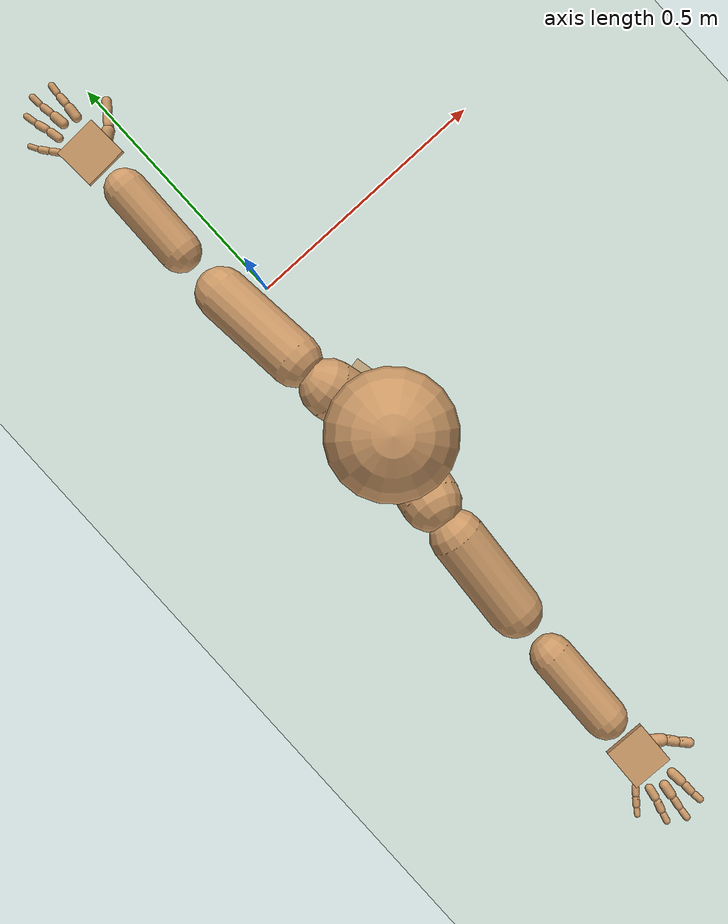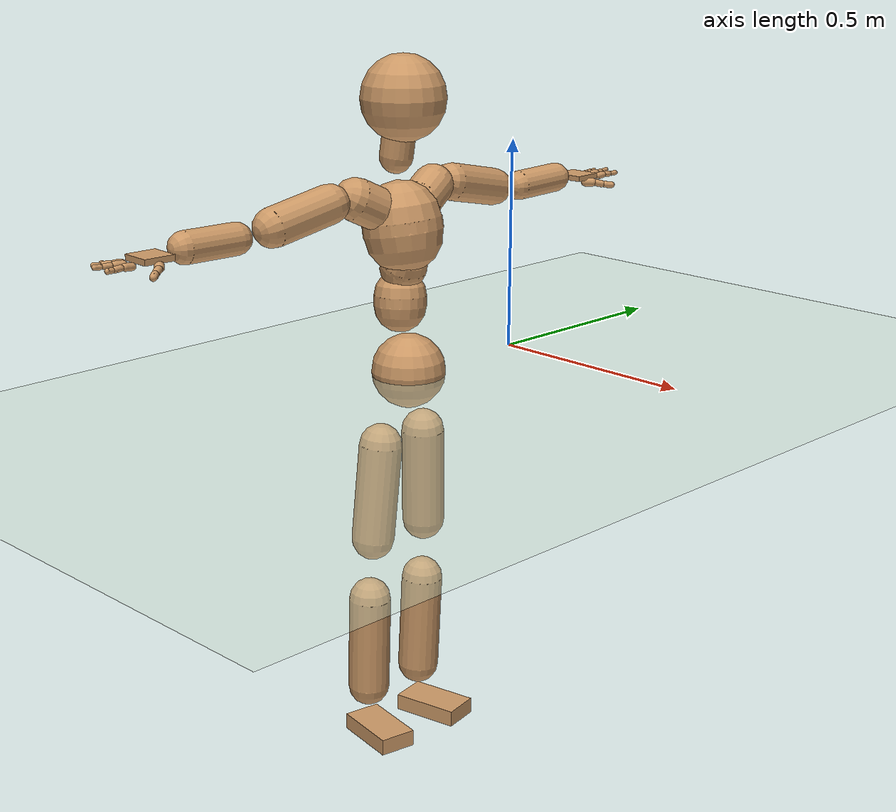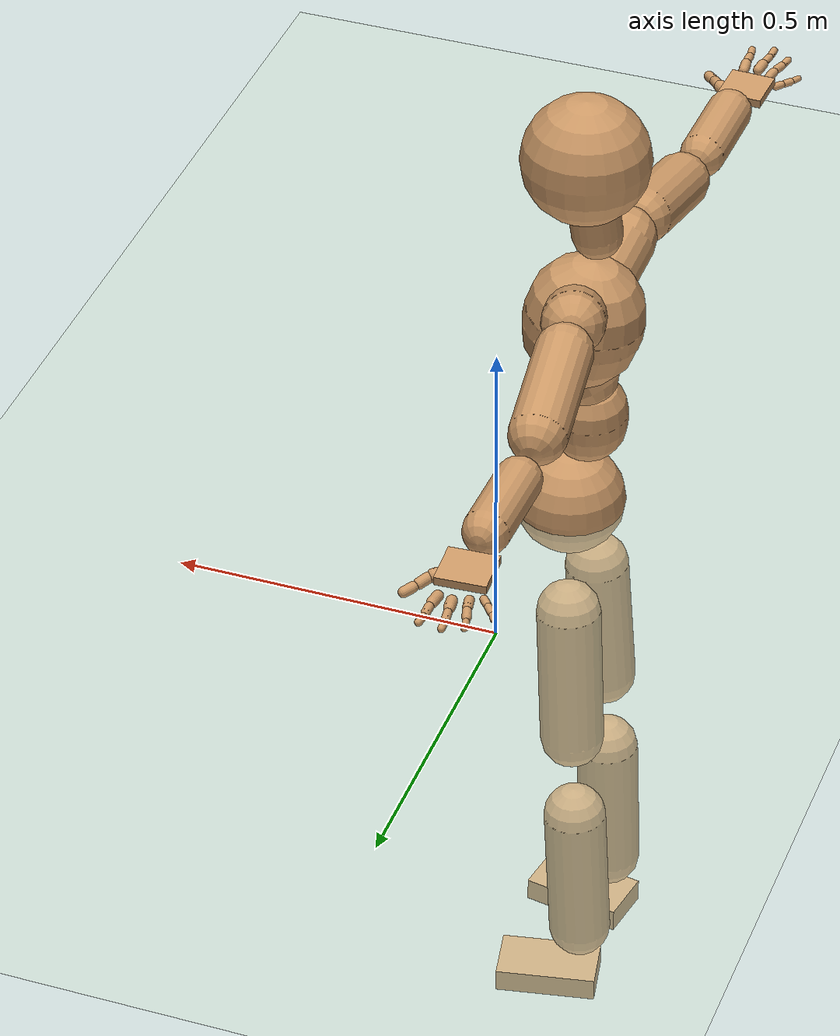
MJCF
<mujoco model="humanoid">
  <compiler coordinate="local" angle="radian"/>
  <default>
    <joint damping="0.0" armature="0.01" stiffness="0.0" limited="true"/>
    <geom conaffinity="1" condim="3" contype="7" margin="0.001" rgba="0.8 0.6 .4 1"/>
  </default>
  <asset>
    <texture type="skybox" builtin="gradient" rgb1=".4 .5 .6" rgb2="0 0 0" width="100" height="100"/>
    <texture builtin="flat" height="1278" mark="cross" markrgb="1 1 1" name="texgeom" random="0.01" rgb1="0.8 0.6 0.4" rgb2="0.8 0.6 0.4" type="cube" width="127"/>
    <texture builtin="checker" height="100" name="texplane" rgb1="0 0 0" rgb2="0.8 0.8 0.8" type="2d" width="100"/>
    <material name="MatPlane" reflectance="0.5" shininess="1" specular="1" texrepeat="60 60" texture="texplane"/>
    <material name="geom" texture="texgeom" texuniform="true"/>
  </asset>
  <worldbody>
    <light cutoff="100" diffuse="1 1 1" dir="-0 0 -1.3" directional="true" exponent="1" pos="0 0 1.3" specular=".1 .1 .1"/>
    <geom conaffinity="1" condim="3" name="floor" pos="0 0 0" rgba="0.8 0.9 0.8 1" size="100 100 .2" type="plane" material="MatPlane"/>
    <body name="Pelvis" pos="0.0003 -0.3403 0.0085">
      <freejoint name="Pelvis"/>
      <geom type="sphere" contype="1" conaffinity="1" density="500" size="0.0858" pos="0.0000 0.0000 0.0000" name="Pelvis"/>
      <body name="L_Hip" pos="-0.0182 0.0628 -0.0872">
        <joint name="L_Hip_x" type="hinge" pos="0 0 0" axis="1 0 0" stiffness="800" damping="80" armature="0.02" range="-180.0000 180.0000"/>
        <joint name="L_Hip_y" type="hinge" pos="0 0 0" axis="0 1 0" stiffness="800" damping="80" armature="0.02" range="-180.0000 180.0000"/>
        <joint name="L_Hip_z" type="hinge" pos="0 0 0" axis="0 0 1" stiffness="800" damping="80" armature="0.02" range="-180.0000 180.0000"/>
        <geom type="capsule" contype="1" conaffinity="1" density="500" fromto="-0.0046 0.0050 -0.0778 -0.0185 0.0202 -0.3114" size="0.05" name="L_Hip"/>
        <body name="L_Knee" pos="-0.0231 0.0252 -0.3892">
          <joint name="L_Knee_x" type="hinge" pos="0 0 0" axis="1 0 0" stiffness="800" damping="80" armature="0.02" range="-180.0000 180.0000"/>
          <joint name="L_Knee_y" type="hinge" pos="0 0 0" axis="0 1 0" stiffness="800" damping="80" armature="0.02" range="-180.0000 180.0000"/>
          <joint name="L_Knee_z" type="hinge" pos="0 0 0" axis="0 0 1" stiffness="800" damping="80" armature="0.02" range="-180.0000 180.0000"/>
          <geom type="capsule" contype="1" conaffinity="1" density="500" fromto="-0.0035 -0.0010 -0.0786 -0.0141 -0.0039 -0.3143" size="0.0492" name="L_Knee"/>
          <body name="L_Ankle" pos="-0.0176 -0.0049 -0.3929">
            <joint name="L_Ankle_x" type="hinge" pos="0 0 0" axis="1 0 0" stiffness="800" damping="80" armature="0.02" range="-180.0000 180.0000"/>
            <joint name="L_Ankle_y" type="hinge" pos="0 0 0" axis="0 1 0" stiffness="800" damping="80" armature="0.02" range="-180.0000 180.0000"/>
            <joint name="L_Ankle_z" type="hinge" pos="0 0 0" axis="0 0 1" stiffness="800" damping="80" armature="0.02" range="-180.0000 180.0000"/>
            <geom type="box" contype="1" conaffinity="1" density="500" pos="0.0520 0.0103 -0.0227" size="0.08 0.0438 0.0195" quat="0.9952 0.0000 0.0000 0.0976" name="L_Ankle"/>
            <body name="L_Toe" pos="0.104 0.0206 -0.0454">
              <joint name="L_Toe_x" type="hinge" pos="0 0 0" axis="1 0 0" stiffness="500" damping="50" armature="0.02" range="-180.0000 180.0000"/>
              <joint name="L_Toe_y" type="hinge" pos="0 0 0" axis="0 1 0" stiffness="500" damping="50" armature="0.02" range="-180.0000 180.0000"/>
              <joint name="L_Toe_z" type="hinge" pos="0 0 0" axis="0 0 1" stiffness="500" damping="50" armature="0.02" range="-180.0000 180.0000"/>
              <geom type="box" contype="1" conaffinity="1" density="500" pos="0.0000 0.0000 0.0230" size="0.0009 0.0022 0.001" quat="0.9945 0.0000 0.0000 0.1048" name="L_Toe"/>
            </body>
          </body>
        </body>
      </body>
      <body name="R_Hip" pos="-0.0199 -0.062 -0.0939">
        <joint name="R_Hip_x" type="hinge" pos="0 0 0" axis="1 0 0" stiffness="800" damping="80" armature="0.02" range="-180.0000 180.0000"/>
        <joint name="R_Hip_y" type="hinge" pos="0 0 0" axis="0 1 0" stiffness="800" damping="80" armature="0.02" range="-180.0000 180.0000"/>
        <joint name="R_Hip_z" type="hinge" pos="0 0 0" axis="0 0 1" stiffness="800" damping="80" armature="0.02" range="-180.0000 180.0000"/>
        <geom type="capsule" contype="1" conaffinity="1" density="500" fromto="-0.0035 -0.0056 -0.0770 -0.0139 -0.0226 -0.3078" size="0.0499" name="R_Hip"/>
        <body name="R_Knee" pos="-0.0173 -0.0282 -0.3848">
          <joint name="R_Knee_x" type="hinge" pos="0 0 0" axis="1 0 0" stiffness="800" damping="80" armature="0.02" range="-180.0000 180.0000"/>
          <joint name="R_Knee_y" type="hinge" pos="0 0 0" axis="0 1 0" stiffness="800" damping="80" armature="0.02" range="-180.0000 180.0000"/>
          <joint name="R_Knee_z" type="hinge" pos="0 0 0" axis="0 0 1" stiffness="800" damping="80" armature="0.02" range="-180.0000 180.0000"/>
          <geom type="capsule" contype="1" conaffinity="1" density="500" fromto="-0.0027 0.0001 -0.0769 -0.0108 0.0004 -0.3076" size="0.0492" name="R_Knee"/>
          <body name="R_Ankle" pos="-0.0135 0.0005 -0.3845">
            <joint name="R_Ankle_x" type="hinge" pos="0 0 0" axis="1 0 0" stiffness="800" damping="80" armature="0.02" range="-180.0000 180.0000"/>
            <joint name="R_Ankle_y" type="hinge" pos="0 0 0" axis="0 1 0" stiffness="800" damping="80" armature="0.02" range="-180.0000 180.0000"/>
            <joint name="R_Ankle_z" type="hinge" pos="0 0 0" axis="0 0 1" stiffness="800" damping="80" armature="0.02" range="-180.0000 180.0000"/>
            <geom type="box" contype="1" conaffinity="1" density="500" pos="0.0489 -0.0084 -0.0246" size="0.08 0.0438 0.0195" quat="0.9964 0.0000 0.0000 -0.0848" name="R_Ankle"/>
            <body name="R_Toe" pos="0.0978 -0.0168 -0.0491">
              <joint name="R_Toe_x" type="hinge" pos="0 0 0" axis="1 0 0" stiffness="500" damping="50" armature="0.02" range="-180.0000 180.0000"/>
              <joint name="R_Toe_y" type="hinge" pos="0 0 0" axis="0 1 0" stiffness="500" damping="50" armature="0.02" range="-180.0000 180.0000"/>
              <joint name="R_Toe_z" type="hinge" pos="0 0 0" axis="0 0 1" stiffness="500" damping="50" armature="0.02" range="-180.0000 180.0000"/>
              <geom type="box" contype="1" conaffinity="1" density="500" pos="0.0000 0.0000 0.0249" size="0.0009 0.0022 0.001" quat="0.9973 0.0000 0.0000 -0.0734" name="R_Toe"/>
            </body>
          </body>
        </body>
      </body>
      <body name="Torso" pos="-0.0235 -0.0047 0.0998">
        <joint name="Torso_x" type="hinge" pos="0 0 0" axis="1 0 0" stiffness="1000" damping="100" armature="0.02" range="-180.0000 180.0000"/>
        <joint name="Torso_y" type="hinge" pos="0 0 0" axis="0 1 0" stiffness="1000" damping="100" armature="0.02" range="-180.0000 180.0000"/>
        <joint name="Torso_z" type="hinge" pos="0 0 0" axis="0 0 1" stiffness="1000" damping="100" armature="0.02" range="-180.0000 180.0000"/>
        <geom type="capsule" contype="1" conaffinity="1" density="500" fromto="-0.0034 0.0048 0.0722 -0.0023 0.0032 0.0481" size="0.0603" name="Torso"/>
        <body name="Spine" pos="-0.0057 0.0079 0.1203">
          <joint name="Spine_x" type="hinge" pos="0 0 0" axis="1 0 0" stiffness="1000" damping="100" armature="0.02" range="-180.0000 180.0000"/>
          <joint name="Spine_y" type="hinge" pos="0 0 0" axis="0 1 0" stiffness="1000" damping="100" armature="0.02" range="-180.0000 180.0000"/>
          <joint name="Spine_z" type="hinge" pos="0 0 0" axis="0 0 1" stiffness="1000" damping="100" armature="0.02" range="-180.0000 180.0000"/>
          <geom type="capsule" contype="1" conaffinity="1" density="500" fromto="0.0149 -0.0024 0.0264 0.0100 -0.0016 0.0176" size="0.0536" name="Spine"/>
          <body name="Chest" pos="0.0249 -0.0041 0.044">
            <joint name="Chest_x" type="hinge" pos="0 0 0" axis="1 0 0" stiffness="1000" damping="100" armature="0.02" range="-180.0000 180.0000"/>
            <joint name="Chest_y" type="hinge" pos="0 0 0" axis="0 1 0" stiffness="1000" damping="100" armature="0.02" range="-180.0000 180.0000"/>
            <joint name="Chest_z" type="hinge" pos="0 0 0" axis="0 0 1" stiffness="1000" damping="100" armature="0.02" range="-180.0000 180.0000"/>
            <geom type="capsule" contype="1" conaffinity="1" density="500" fromto="-0.0139 -0.0015 0.0819 -0.0093 -0.0010 0.0546" size="0.0912" name="Chest"/>
            <body name="Neck" pos="-0.0336 -0.0052 0.1913">
              <joint name="Neck_x" type="hinge" pos="0 0 0" axis="1 0 0" stiffness="500" damping="50" armature="0.02" range="-180.0000 180.0000"/>
              <joint name="Neck_y" type="hinge" pos="0 0 0" axis="0 1 0" stiffness="500" damping="50" armature="0.02" range="-180.0000 180.0000"/>
              <joint name="Neck_z" type="hinge" pos="0 0 0" axis="0 0 1" stiffness="500" damping="50" armature="0.02" range="-180.0000 180.0000"/>
              <geom type="capsule" contype="1" conaffinity="1" density="500" fromto="0.0043 0.0016 0.0324 0.0171 0.0066 0.1295" size="0.0384" name="Neck"/>
              <body name="Head" pos="0.0214 0.0082 0.1619">
                <joint name="Head_x" type="hinge" pos="0 0 0" axis="1 0 0" stiffness="500" damping="50" armature="0.02" range="-180.0000 180.0000"/>
                <joint name="Head_y" type="hinge" pos="0 0 0" axis="0 1 0" stiffness="500" damping="50" armature="0.02" range="-180.0000 180.0000"/>
                <joint name="Head_z" type="hinge" pos="0 0 0" axis="0 0 1" stiffness="500" damping="50" armature="0.02" range="-180.0000 180.0000"/>
                <geom type="sphere" contype="1" conaffinity="1" density="500" size="0.0971" pos="0.0000 0.0000 0.0000" name="Head"/>
              </body>
            </body>
            <body name="L_Thorax" pos="-0.0151 0.049 0.1113">
              <joint name="L_Thorax_x" type="hinge" pos="0 0 0" axis="1 0 0" stiffness="500" damping="50" armature="0.02" range="-180.0000 180.0000"/>
              <joint name="L_Thorax_y" type="hinge" pos="0 0 0" axis="0 1 0" stiffness="500" damping="50" armature="0.02" range="-180.0000 180.0000"/>
              <joint name="L_Thorax_z" type="hinge" pos="0 0 0" axis="0 0 1" stiffness="500" damping="50" armature="0.02" range="-180.0000 180.0000"/>
              <geom type="capsule" contype="1" conaffinity="1" density="500" fromto="-0.0046 0.0165 0.0083 -0.0182 0.0658 0.0331" size="0.0478" name="L_Thorax"/>
              <body name="L_Shoulder" pos="-0.0228 0.0823 0.0414">
                <joint name="L_Shoulder_x" type="hinge" pos="0 0 0" axis="1 0 0" stiffness="500" damping="50" armature="0.02" range="-180.0000 180.0000"/>
                <joint name="L_Shoulder_y" type="hinge" pos="0 0 0" axis="0 1 0" stiffness="500" damping="50" armature="0.02" range="-180.0000 180.0000"/>
                <joint name="L_Shoulder_z" type="hinge" pos="0 0 0" axis="0 0 1" stiffness="500" damping="50" armature="0.02" range="-180.0000 180.0000"/>
                <geom type="capsule" contype="1" conaffinity="1" density="500" fromto="-0.0050 0.0526 -0.0114 -0.0201 0.2102 -0.0454" size="0.0438" name="L_Shoulder"/>
                <body name="L_Elbow" pos="-0.0251 0.2628 -0.0568">
                  <joint name="L_Elbow_x" type="hinge" pos="0 0 0" axis="1 0 0" stiffness="500" damping="50" armature="0.02" range="-720.0000 720.0000"/>
                  <joint name="L_Elbow_y" type="hinge" pos="0 0 0" axis="0 1 0" stiffness="500" damping="50" armature="0.02" range="-720.0000 720.0000"/>
                  <joint name="L_Elbow_z" type="hinge" pos="0 0 0" axis="0 0 1" stiffness="500" damping="50" armature="0.02" range="-720.0000 720.0000"/>
                  <geom type="capsule" contype="1" conaffinity="1" density="500" fromto="0.0006 0.0433 0.0013 0.0023 0.1734 0.0050" size="0.0349" name="L_Elbow"/>
                  <body name="L_Wrist" pos="0.0028 0.2167 0.0063">
                    <joint name="L_Wrist_x" type="hinge" pos="0 0 0" axis="1 0 0" stiffness="300" damping="30" armature="0.02" range="-180.0000 180.0000"/>
                    <joint name="L_Wrist_y" type="hinge" pos="0 0 0" axis="0 1 0" stiffness="300" damping="30" armature="0.02" range="-180.0000 180.0000"/>
                    <joint name="L_Wrist_z" type="hinge" pos="0 0 0" axis="0 0 1" stiffness="300" damping="30" armature="0.02" range="-180.0000 180.0000"/>
                    <geom type="box" contype="1" conaffinity="1" density="500" pos="-0.0021 0.0393 -0.0080" size="0.0357 0.0378 0.0064" quat="0.7259 0.0000 0.0000 -0.6878" name="L_Wrist"/>
                    <body name="L_Index1" pos="0.0186 0.0927 -0.0142">
                      <joint name="L_Index1_x" type="hinge" pos="0 0 0" axis="1 0 0" stiffness="100" damping="10" armature="0.02" range="-180.0000 180.0000"/>
                      <joint name="L_Index1_y" type="hinge" pos="0 0 0" axis="0 1 0" stiffness="100" damping="10" armature="0.02" range="-180.0000 180.0000"/>
                      <joint name="L_Index1_z" type="hinge" pos="0 0 0" axis="0 0 1" stiffness="100" damping="10" armature="0.02" range="-180.0000 180.0000"/>
                      <geom type="capsule" contype="1" conaffinity="1" density="500" fromto="0.0005 0.0060 0.0005 0.0021 0.0239 0.0020" size="0.0082" name="L_Index1"/>
                      <body name="L_Index2" pos="0.0026 0.0299 0.0025">
                        <joint name="L_Index2_x" type="hinge" pos="0 0 0" axis="1 0 0" stiffness="100" damping="10" armature="0.02" range="-180.0000 180.0000"/>
                        <joint name="L_Index2_y" type="hinge" pos="0 0 0" axis="0 1 0" stiffness="100" damping="10" armature="0.02" range="-180.0000 180.0000"/>
                        <joint name="L_Index2_z" type="hinge" pos="0 0 0" axis="0 0 1" stiffness="100" damping="10" armature="0.02" range="-180.0000 180.0000"/>
                        <geom type="capsule" contype="1" conaffinity="1" density="500" fromto="0.0001 0.0042 -0.0003 0.0004 0.0170 -0.0011" size="0.0068" name="L_Index2"/>
                        <body name="L_Index3" pos="0.0005 0.0212 -0.0014">
                          <joint name="L_Index3_x" type="hinge" pos="0 0 0" axis="1 0 0" stiffness="100" damping="10" armature="0.02" range="-180.0000 180.0000"/>
                          <joint name="L_Index3_y" type="hinge" pos="0 0 0" axis="0 1 0" stiffness="100" damping="10" armature="0.02" range="-180.0000 180.0000"/>
                          <joint name="L_Index3_z" type="hinge" pos="0 0 0" axis="0 0 1" stiffness="100" damping="10" armature="0.02" range="-180.0000 180.0000"/>
                          <geom type="capsule" contype="1" conaffinity="1" density="500" fromto="0.0005 0.0046 0.0001 0.0020 0.0186 0.0005" size="0.0058" name="L_Index3"/>
                        </body>
                      </body>
                    </body>
                    <body name="L_Middle1" pos="-0.0025 0.099 -0.012">
                      <joint name="L_Middle1_x" type="hinge" pos="0 0 0" axis="1 0 0" stiffness="100" damping="10" armature="0.02" range="-180.0000 180.0000"/>
                      <joint name="L_Middle1_y" type="hinge" pos="0 0 0" axis="0 1 0" stiffness="100" damping="10" armature="0.02" range="-180.0000 180.0000"/>
                      <joint name="L_Middle1_z" type="hinge" pos="0 0 0" axis="0 0 1" stiffness="100" damping="10" armature="0.02" range="-180.0000 180.0000"/>
                      <geom type="capsule" contype="1" conaffinity="1" density="500" fromto="-0.0008 0.0056 0.0002 -0.0031 0.0225 0.0009" size="0.0083" name="L_Middle1"/>
                      <body name="L_Middle2" pos="-0.0038 0.0282 0.0012">
                        <joint name="L_Middle2_x" type="hinge" pos="0 0 0" axis="1 0 0" stiffness="100" damping="10" armature="0.02" range="-180.0000 180.0000"/>
                        <joint name="L_Middle2_y" type="hinge" pos="0 0 0" axis="0 1 0" stiffness="100" damping="10" armature="0.02" range="-180.0000 180.0000"/>
                        <joint name="L_Middle2_z" type="hinge" pos="0 0 0" axis="0 0 1" stiffness="100" damping="10" armature="0.02" range="-180.0000 180.0000"/>
                        <geom type="capsule" contype="1" conaffinity="1" density="500" fromto="-0.0007 0.0044 -0.0001 -0.0029 0.0176 -0.0003" size="0.0063" name="L_Middle2"/>
                        <body name="L_Middle3" pos="-0.0037 0.022 -0.0004">
                          <joint name="L_Middle3_x" type="hinge" pos="0 0 0" axis="1 0 0" stiffness="100" damping="10" armature="0.02" range="-180.0000 180.0000"/>
                          <joint name="L_Middle3_y" type="hinge" pos="0 0 0" axis="0 1 0" stiffness="100" damping="10" armature="0.02" range="-180.0000 180.0000"/>
                          <joint name="L_Middle3_z" type="hinge" pos="0 0 0" axis="0 0 1" stiffness="100" damping="10" armature="0.02" range="-180.0000 180.0000"/>
                          <geom type="capsule" contype="1" conaffinity="1" density="500" fromto="-0.0003 0.0048 0.0003 -0.0013 0.0192 0.0013" size="0.0055" name="L_Middle3"/>
                        </body>
                      </body>
                    </body>
                    <body name="L_Pinky1" pos="-0.038 0.0757 -0.0191">
                      <joint name="L_Pinky1_x" type="hinge" pos="0 0 0" axis="1 0 0" stiffness="100" damping="10" armature="0.02" range="-180.0000 180.0000"/>
                      <joint name="L_Pinky1_y" type="hinge" pos="0 0 0" axis="0 1 0" stiffness="100" damping="10" armature="0.02" range="-180.0000 180.0000"/>
                      <joint name="L_Pinky1_z" type="hinge" pos="0 0 0" axis="0 0 1" stiffness="100" damping="10" armature="0.02" range="-180.0000 180.0000"/>
                      <geom type="capsule" contype="1" conaffinity="1" density="500" fromto="-0.0023 0.0027 -0.0001 -0.0090 0.0108 -0.0002" size="0.006" name="L_Pinky1"/>
                      <body name="L_Pinky2" pos="-0.0113 0.0135 -0.0003">
                        <joint name="L_Pinky2_x" type="hinge" pos="0 0 0" axis="1 0 0" stiffness="100" damping="10" armature="0.02" range="-180.0000 180.0000"/>
                        <joint name="L_Pinky2_y" type="hinge" pos="0 0 0" axis="0 1 0" stiffness="100" damping="10" armature="0.02" range="-180.0000 180.0000"/>
                        <joint name="L_Pinky2_z" type="hinge" pos="0 0 0" axis="0 0 1" stiffness="100" damping="10" armature="0.02" range="-180.0000 180.0000"/>
                        <geom type="capsule" contype="1" conaffinity="1" density="500" fromto="-0.0022 0.0028 -0.0001 -0.0087 0.0111 -0.0005" size="0.0059" name="L_Pinky2"/>
                        <body name="L_Pinky3" pos="-0.0109 0.0139 -0.0006">
                          <joint name="L_Pinky3_x" type="hinge" pos="0 0 0" axis="1 0 0" stiffness="100" damping="10" armature="0.02" range="-180.0000 180.0000"/>
                          <joint name="L_Pinky3_y" type="hinge" pos="0 0 0" axis="0 1 0" stiffness="100" damping="10" armature="0.02" range="-180.0000 180.0000"/>
                          <joint name="L_Pinky3_z" type="hinge" pos="0 0 0" axis="0 0 1" stiffness="100" damping="10" armature="0.02" range="-180.0000 180.0000"/>
                          <geom type="capsule" contype="1" conaffinity="1" density="500" fromto="-0.0018 0.0032 0.0003 -0.0071 0.0127 0.0011" size="0.0046" name="L_Pinky3"/>
                        </body>
                      </body>
                    </body>
                    <body name="L_Ring1" pos="-0.0233 0.0878 -0.0144">
                      <joint name="L_Ring1_x" type="hinge" pos="0 0 0" axis="1 0 0" stiffness="100" damping="10" armature="0.02" range="-180.0000 180.0000"/>
                      <joint name="L_Ring1_y" type="hinge" pos="0 0 0" axis="0 1 0" stiffness="100" damping="10" armature="0.02" range="-180.0000 180.0000"/>
                      <joint name="L_Ring1_z" type="hinge" pos="0 0 0" axis="0 0 1" stiffness="100" damping="10" armature="0.02" range="-180.0000 180.0000"/>
                      <geom type="capsule" contype="1" conaffinity="1" density="500" fromto="-0.0010 0.0051 0.0003 -0.0041 0.0205 0.0013" size="0.0072" name="L_Ring1"/>
                      <body name="L_Ring2" pos="-0.0051 0.0256 0.0016">
                        <joint name="L_Ring2_x" type="hinge" pos="0 0 0" axis="1 0 0" stiffness="100" damping="10" armature="0.02" range="-180.0000 180.0000"/>
                        <joint name="L_Ring2_y" type="hinge" pos="0 0 0" axis="0 1 0" stiffness="100" damping="10" armature="0.02" range="-180.0000 180.0000"/>
                        <joint name="L_Ring2_z" type="hinge" pos="0 0 0" axis="0 0 1" stiffness="100" damping="10" armature="0.02" range="-180.0000 180.0000"/>
                        <geom type="capsule" contype="1" conaffinity="1" density="500" fromto="-0.0013 0.0042 -0.0002 -0.0054 0.0169 -0.0007" size="0.0067" name="L_Ring2"/>
                        <body name="L_Ring3" pos="-0.0067 0.0211 -0.0009">
                          <joint name="L_Ring3_x" type="hinge" pos="0 0 0" axis="1 0 0" stiffness="100" damping="10" armature="0.02" range="-180.0000 180.0000"/>
                          <joint name="L_Ring3_y" type="hinge" pos="0 0 0" axis="0 1 0" stiffness="100" damping="10" armature="0.02" range="-180.0000 180.0000"/>
                          <joint name="L_Ring3_z" type="hinge" pos="0 0 0" axis="0 0 1" stiffness="100" damping="10" armature="0.02" range="-180.0000 180.0000"/>
                          <geom type="capsule" contype="1" conaffinity="1" density="500" fromto="-0.0009 0.0046 0.0002 -0.0038 0.0185 0.0009" size="0.0053" name="L_Ring3"/>
                        </body>
                      </body>
                    </body>
                    <body name="L_Thumb1" pos="0.0241 0.0378 -0.0208">
                      <joint name="L_Thumb1_x" type="hinge" pos="0 0 0" axis="1 0 0" stiffness="100" damping="10" armature="0.02" range="-180.0000 180.0000"/>
                      <joint name="L_Thumb1_y" type="hinge" pos="0 0 0" axis="0 1 0" stiffness="100" damping="10" armature="0.02" range="-180.0000 180.0000"/>
                      <joint name="L_Thumb1_z" type="hinge" pos="0 0 0" axis="0 0 1" stiffness="100" damping="10" armature="0.02" range="-180.0000 180.0000"/>
                      <geom type="capsule" contype="1" conaffinity="1" density="500" fromto="0.0044 0.0031 0.0001 0.0177 0.0126 0.0003" size="0.0107" name="L_Thumb1"/>
                      <body name="L_Thumb2" pos="0.0221 0.0157 0.0004">
                        <joint name="L_Thumb2_x" type="hinge" pos="0 0 0" axis="1 0 0" stiffness="100" damping="10" armature="0.02" range="-180.0000 180.0000"/>
                        <joint name="L_Thumb2_y" type="hinge" pos="0 0 0" axis="0 1 0" stiffness="100" damping="10" armature="0.02" range="-180.0000 180.0000"/>
                        <joint name="L_Thumb2_z" type="hinge" pos="0 0 0" axis="0 0 1" stiffness="100" damping="10" armature="0.02" range="-180.0000 180.0000"/>
                        <geom type="capsule" contype="1" conaffinity="1" density="500" fromto="0.0027 0.0038 -0.0011 0.0108 0.0153 -0.0042" size="0.0084" name="L_Thumb2"/>
                        <body name="L_Thumb3" pos="0.0135 0.0191 -0.0053">
                          <joint name="L_Thumb3_x" type="hinge" pos="0 0 0" axis="1 0 0" stiffness="100" damping="10" armature="0.02" range="-180.0000 180.0000"/>
                          <joint name="L_Thumb3_y" type="hinge" pos="0 0 0" axis="0 1 0" stiffness="100" damping="10" armature="0.02" range="-180.0000 180.0000"/>
                          <joint name="L_Thumb3_z" type="hinge" pos="0 0 0" axis="0 0 1" stiffness="100" damping="10" armature="0.02" range="-180.0000 180.0000"/>
                          <geom type="capsule" contype="1" conaffinity="1" density="500" fromto="0.0031 0.0042 -0.0007 0.0124 0.0169 -0.0026" size="0.008" name="L_Thumb3"/>
                        </body>
                      </body>
                    </body>
                  </body>
                </body>
              </body>
            </body>
            <body name="R_Thorax" pos="-0.0207 -0.0512 0.1071">
              <joint name="R_Thorax_x" type="hinge" pos="0 0 0" axis="1 0 0" stiffness="500" damping="50" armature="0.02" range="-180.0000 180.0000"/>
              <joint name="R_Thorax_y" type="hinge" pos="0 0 0" axis="0 1 0" stiffness="500" damping="50" armature="0.02" range="-180.0000 180.0000"/>
              <joint name="R_Thorax_z" type="hinge" pos="0 0 0" axis="0 0 1" stiffness="500" damping="50" armature="0.02" range="-180.0000 180.0000"/>
              <geom type="capsule" contype="1" conaffinity="1" density="500" fromto="-0.0034 -0.0177 0.0089 -0.0135 -0.0708 0.0355" size="0.0488" name="R_Thorax"/>
              <body name="R_Shoulder" pos="-0.0169 -0.0885 0.0443">
                <joint name="R_Shoulder_x" type="hinge" pos="0 0 0" axis="1 0 0" stiffness="500" damping="50" armature="0.02" range="-180.0000 180.0000"/>
                <joint name="R_Shoulder_y" type="hinge" pos="0 0 0" axis="0 1 0" stiffness="500" damping="50" armature="0.02" range="-180.0000 180.0000"/>
                <joint name="R_Shoulder_z" type="hinge" pos="0 0 0" axis="0 0 1" stiffness="500" damping="50" armature="0.02" range="-180.0000 180.0000"/>
                <geom type="capsule" contype="1" conaffinity="1" density="500" fromto="-0.0037 -0.0507 -0.0104 -0.0147 -0.2026 -0.0416" size="0.0442" name="R_Shoulder"/>
                <body name="R_Elbow" pos="-0.0184 -0.2533 -0.052">
                  <joint name="R_Elbow_x" type="hinge" pos="0 0 0" axis="1 0 0" stiffness="500" damping="50" armature="0.02" range="-720.0000 720.0000"/>
                  <joint name="R_Elbow_y" type="hinge" pos="0 0 0" axis="0 1 0" stiffness="500" damping="50" armature="0.02" range="-720.0000 720.0000"/>
                  <joint name="R_Elbow_z" type="hinge" pos="0 0 0" axis="0 0 1" stiffness="500" damping="50" armature="0.02" range="-720.0000 720.0000"/>
                  <geom type="capsule" contype="1" conaffinity="1" density="500" fromto="-0.0011 -0.0436 0.0004 -0.0043 -0.1742 0.0016" size="0.0352" name="R_Elbow"/>
                  <body name="R_Wrist" pos="-0.0054 -0.2178 0.002">
                    <joint name="R_Wrist_x" type="hinge" pos="0 0 0" axis="1 0 0" stiffness="300" damping="30" armature="0.02" range="-180.0000 180.0000"/>
                    <joint name="R_Wrist_y" type="hinge" pos="0 0 0" axis="0 1 0" stiffness="300" damping="30" armature="0.02" range="-180.0000 180.0000"/>
                    <joint name="R_Wrist_z" type="hinge" pos="0 0 0" axis="0 0 1" stiffness="300" damping="30" armature="0.02" range="-180.0000 180.0000"/>
                    <geom type="box" contype="1" conaffinity="1" density="500" pos="-0.0015 -0.0388 -0.0077" size="0.0357 0.0352 0.0067" quat="0.7205 0.0000 0.0000 0.6934" name="R_Wrist"/>
                    <body name="R_Index1" pos="0.0198 -0.0916 -0.0135">
                      <joint name="R_Index1_x" type="hinge" pos="0 0 0" axis="1 0 0" stiffness="100" damping="10" armature="0.02" range="-180.0000 180.0000"/>
                      <joint name="R_Index1_y" type="hinge" pos="0 0 0" axis="0 1 0" stiffness="100" damping="10" armature="0.02" range="-180.0000 180.0000"/>
                      <joint name="R_Index1_z" type="hinge" pos="0 0 0" axis="0 0 1" stiffness="100" damping="10" armature="0.02" range="-180.0000 180.0000"/>
                      <geom type="capsule" contype="1" conaffinity="1" density="500" fromto="0.0005 -0.0060 0.0005 0.0021 -0.0239 0.0020" size="0.0082" name="R_Index1"/>
                      <body name="R_Index2" pos="0.0026 -0.0299 0.0025">
                        <joint name="R_Index2_x" type="hinge" pos="0 0 0" axis="1 0 0" stiffness="100" damping="10" armature="0.02" range="-180.0000 180.0000"/>
                        <joint name="R_Index2_y" type="hinge" pos="0 0 0" axis="0 1 0" stiffness="100" damping="10" armature="0.02" range="-180.0000 180.0000"/>
                        <joint name="R_Index2_z" type="hinge" pos="0 0 0" axis="0 0 1" stiffness="100" damping="10" armature="0.02" range="-180.0000 180.0000"/>
                        <geom type="capsule" contype="1" conaffinity="1" density="500" fromto="0.0001 -0.0042 -0.0003 0.0004 -0.0170 -0.0011" size="0.0068" name="R_Index2"/>
                        <body name="R_Index3" pos="0.0005 -0.0212 -0.0014">
                          <joint name="R_Index3_x" type="hinge" pos="0 0 0" axis="1 0 0" stiffness="100" damping="10" armature="0.02" range="-180.0000 180.0000"/>
                          <joint name="R_Index3_y" type="hinge" pos="0 0 0" axis="0 1 0" stiffness="100" damping="10" armature="0.02" range="-180.0000 180.0000"/>
                          <joint name="R_Index3_z" type="hinge" pos="0 0 0" axis="0 0 1" stiffness="100" damping="10" armature="0.02" range="-180.0000 180.0000"/>
                          <geom type="capsule" contype="1" conaffinity="1" density="500" fromto="0.0005 -0.0038 0.0001 0.0020 -0.0154 0.0005" size="0.006" name="R_Index3"/>
                        </body>
                      </body>
                    </body>
                    <body name="R_Middle1" pos="-0.0012 -0.098 -0.0113">
                      <joint name="R_Middle1_x" type="hinge" pos="0 0 0" axis="1 0 0" stiffness="100" damping="10" armature="0.02" range="-180.0000 180.0000"/>
                      <joint name="R_Middle1_y" type="hinge" pos="0 0 0" axis="0 1 0" stiffness="100" damping="10" armature="0.02" range="-180.0000 180.0000"/>
                      <joint name="R_Middle1_z" type="hinge" pos="0 0 0" axis="0 0 1" stiffness="100" damping="10" armature="0.02" range="-180.0000 180.0000"/>
                      <geom type="capsule" contype="1" conaffinity="1" density="500" fromto="-0.0008 -0.0056 0.0002 -0.0031 -0.0225 0.0009" size="0.0083" name="R_Middle1"/>
                      <body name="R_Middle2" pos="-0.0038 -0.0282 0.0012">
                        <joint name="R_Middle2_x" type="hinge" pos="0 0 0" axis="1 0 0" stiffness="100" damping="10" armature="0.02" range="-180.0000 180.0000"/>
                        <joint name="R_Middle2_y" type="hinge" pos="0 0 0" axis="0 1 0" stiffness="100" damping="10" armature="0.02" range="-180.0000 180.0000"/>
                        <joint name="R_Middle2_z" type="hinge" pos="0 0 0" axis="0 0 1" stiffness="100" damping="10" armature="0.02" range="-180.0000 180.0000"/>
                        <geom type="capsule" contype="1" conaffinity="1" density="500" fromto="-0.0007 -0.0044 -0.0001 -0.0029 -0.0176 -0.0003" size="0.0063" name="R_Middle2"/>
                        <body name="R_Middle3" pos="-0.0037 -0.022 -0.0004">
                          <joint name="R_Middle3_x" type="hinge" pos="0 0 0" axis="1 0 0" stiffness="100" damping="10" armature="0.02" range="-180.0000 180.0000"/>
                          <joint name="R_Middle3_y" type="hinge" pos="0 0 0" axis="0 1 0" stiffness="100" damping="10" armature="0.02" range="-180.0000 180.0000"/>
                          <joint name="R_Middle3_z" type="hinge" pos="0 0 0" axis="0 0 1" stiffness="100" damping="10" armature="0.02" range="-180.0000 180.0000"/>
                          <geom type="capsule" contype="1" conaffinity="1" density="500" fromto="-0.0003 -0.0040 0.0003 -0.0013 -0.0160 0.0013" size="0.0058" name="R_Middle3"/>
                        </body>
                      </body>
                    </body>
                    <body name="R_Pinky1" pos="-0.0368 -0.0746 -0.0184">
                      <joint name="R_Pinky1_x" type="hinge" pos="0 0 0" axis="1 0 0" stiffness="100" damping="10" armature="0.02" range="-180.0000 180.0000"/>
                      <joint name="R_Pinky1_y" type="hinge" pos="0 0 0" axis="0 1 0" stiffness="100" damping="10" armature="0.02" range="-180.0000 180.0000"/>
                      <joint name="R_Pinky1_z" type="hinge" pos="0 0 0" axis="0 0 1" stiffness="100" damping="10" armature="0.02" range="-180.0000 180.0000"/>
                      <geom type="capsule" contype="1" conaffinity="1" density="500" fromto="-0.0023 -0.0027 -0.0001 -0.0090 -0.0108 -0.0002" size="0.006" name="R_Pinky1"/>
                      <body name="R_Pinky2" pos="-0.0113 -0.0135 -0.0003">
                        <joint name="R_Pinky2_x" type="hinge" pos="0 0 0" axis="1 0 0" stiffness="100" damping="10" armature="0.02" range="-180.0000 180.0000"/>
                        <joint name="R_Pinky2_y" type="hinge" pos="0 0 0" axis="0 1 0" stiffness="100" damping="10" armature="0.02" range="-180.0000 180.0000"/>
                        <joint name="R_Pinky2_z" type="hinge" pos="0 0 0" axis="0 0 1" stiffness="100" damping="10" armature="0.02" range="-180.0000 180.0000"/>
                        <geom type="capsule" contype="1" conaffinity="1" density="500" fromto="-0.0022 -0.0028 -0.0001 -0.0087 -0.0111 -0.0005" size="0.0059" name="R_Pinky2"/>
                        <body name="R_Pinky3" pos="-0.0109 -0.0139 -0.0006">
                          <joint name="R_Pinky3_x" type="hinge" pos="0 0 0" axis="1 0 0" stiffness="100" damping="10" armature="0.02" range="-180.0000 180.0000"/>
                          <joint name="R_Pinky3_y" type="hinge" pos="0 0 0" axis="0 1 0" stiffness="100" damping="10" armature="0.02" range="-180.0000 180.0000"/>
                          <joint name="R_Pinky3_z" type="hinge" pos="0 0 0" axis="0 0 1" stiffness="100" damping="10" armature="0.02" range="-180.0000 180.0000"/>
                          <geom type="capsule" contype="1" conaffinity="1" density="500" fromto="-0.0018 -0.0024 0.0003 -0.0071 -0.0095 0.0011" size="0.0048" name="R_Pinky3"/>
                        </body>
                      </body>
                    </body>
                    <body name="R_Ring1" pos="-0.0221 -0.0868 -0.0137">
                      <joint name="R_Ring1_x" type="hinge" pos="0 0 0" axis="1 0 0" stiffness="100" damping="10" armature="0.02" range="-180.0000 180.0000"/>
                      <joint name="R_Ring1_y" type="hinge" pos="0 0 0" axis="0 1 0" stiffness="100" damping="10" armature="0.02" range="-180.0000 180.0000"/>
                      <joint name="R_Ring1_z" type="hinge" pos="0 0 0" axis="0 0 1" stiffness="100" damping="10" armature="0.02" range="-180.0000 180.0000"/>
                      <geom type="capsule" contype="1" conaffinity="1" density="500" fromto="-0.0010 -0.0051 0.0003 -0.0041 -0.0205 0.0013" size="0.0072" name="R_Ring1"/>
                      <body name="R_Ring2" pos="-0.0051 -0.0256 0.0016">
                        <joint name="R_Ring2_x" type="hinge" pos="0 0 0" axis="1 0 0" stiffness="100" damping="10" armature="0.02" range="-180.0000 180.0000"/>
                        <joint name="R_Ring2_y" type="hinge" pos="0 0 0" axis="0 1 0" stiffness="100" damping="10" armature="0.02" range="-180.0000 180.0000"/>
                        <joint name="R_Ring2_z" type="hinge" pos="0 0 0" axis="0 0 1" stiffness="100" damping="10" armature="0.02" range="-180.0000 180.0000"/>
                        <geom type="capsule" contype="1" conaffinity="1" density="500" fromto="-0.0013 -0.0042 -0.0002 -0.0054 -0.0169 -0.0007" size="0.0067" name="R_Ring2"/>
                        <body name="R_Ring3" pos="-0.0067 -0.0211 -0.0009">
                          <joint name="R_Ring3_x" type="hinge" pos="0 0 0" axis="1 0 0" stiffness="100" damping="10" armature="0.02" range="-180.0000 180.0000"/>
                          <joint name="R_Ring3_y" type="hinge" pos="0 0 0" axis="0 1 0" stiffness="100" damping="10" armature="0.02" range="-180.0000 180.0000"/>
                          <joint name="R_Ring3_z" type="hinge" pos="0 0 0" axis="0 0 1" stiffness="100" damping="10" armature="0.02" range="-180.0000 180.0000"/>
                          <geom type="capsule" contype="1" conaffinity="1" density="500" fromto="-0.0009 -0.0038 0.0002 -0.0038 -0.0153 0.0009" size="0.0055" name="R_Ring3"/>
                        </body>
                      </body>
                    </body>
                    <body name="R_Thumb1" pos="0.0254 -0.0368 -0.0201">
                      <joint name="R_Thumb1_x" type="hinge" pos="0 0 0" axis="1 0 0" stiffness="100" damping="10" armature="0.02" range="-180.0000 180.0000"/>
                      <joint name="R_Thumb1_y" type="hinge" pos="0 0 0" axis="0 1 0" stiffness="100" damping="10" armature="0.02" range="-180.0000 180.0000"/>
                      <joint name="R_Thumb1_z" type="hinge" pos="0 0 0" axis="0 0 1" stiffness="100" damping="10" armature="0.02" range="-180.0000 180.0000"/>
                      <geom type="capsule" contype="1" conaffinity="1" density="500" fromto="0.0044 -0.0031 0.0001 0.0177 -0.0126 0.0003" size="0.0107" name="R_Thumb1"/>
                      <body name="R_Thumb2" pos="0.0221 -0.0157 0.0004">
                        <joint name="R_Thumb2_x" type="hinge" pos="0 0 0" axis="1 0 0" stiffness="100" damping="10" armature="0.02" range="-180.0000 180.0000"/>
                        <joint name="R_Thumb2_y" type="hinge" pos="0 0 0" axis="0 1 0" stiffness="100" damping="10" armature="0.02" range="-180.0000 180.0000"/>
                        <joint name="R_Thumb2_z" type="hinge" pos="0 0 0" axis="0 0 1" stiffness="100" damping="10" armature="0.02" range="-180.0000 180.0000"/>
                        <geom type="capsule" contype="1" conaffinity="1" density="500" fromto="0.0027 -0.0038 -0.0011 0.0108 -0.0153 -0.0042" size="0.0084" name="R_Thumb2"/>
                        <body name="R_Thumb3" pos="0.0135 -0.0191 -0.0053">
                          <joint name="R_Thumb3_x" type="hinge" pos="0 0 0" axis="1 0 0" stiffness="100" damping="10" armature="0.02" range="-180.0000 180.0000"/>
                          <joint name="R_Thumb3_y" type="hinge" pos="0 0 0" axis="0 1 0" stiffness="100" damping="10" armature="0.02" range="-180.0000 180.0000"/>
                          <joint name="R_Thumb3_z" type="hinge" pos="0 0 0" axis="0 0 1" stiffness="100" damping="10" armature="0.02" range="-180.0000 180.0000"/>
                          <geom type="capsule" contype="1" conaffinity="1" density="500" fromto="0.0031 -0.0034 -0.0007 0.0124 -0.0137 -0.0026" size="0.0082" name="R_Thumb3"/>
                        </body>
                      </body>
                    </body>
                  </body>
                </body>
              </body>
            </body>
          </body>
        </body>
      </body>
    </body>
  </worldbody>
  <actuator>
    <motor name="L_Hip_x" joint="L_Hip_x" gear="500"/>
    <motor name="L_Hip_y" joint="L_Hip_y" gear="500"/>
    <motor name="L_Hip_z" joint="L_Hip_z" gear="500"/>
    <motor name="L_Knee_x" joint="L_Knee_x" gear="500"/>
    <motor name="L_Knee_y" joint="L_Knee_y" gear="500"/>
    <motor name="L_Knee_z" joint="L_Knee_z" gear="500"/>
    <motor name="L_Ankle_x" joint="L_Ankle_x" gear="500"/>
    <motor name="L_Ankle_y" joint="L_Ankle_y" gear="500"/>
    <motor name="L_Ankle_z" joint="L_Ankle_z" gear="500"/>
    <motor name="L_Toe_x" joint="L_Toe_x" gear="500"/>
    <motor name="L_Toe_y" joint="L_Toe_y" gear="500"/>
    <motor name="L_Toe_z" joint="L_Toe_z" gear="500"/>
    <motor name="R_Hip_x" joint="R_Hip_x" gear="500"/>
    <motor name="R_Hip_y" joint="R_Hip_y" gear="500"/>
    <motor name="R_Hip_z" joint="R_Hip_z" gear="500"/>
    <motor name="R_Knee_x" joint="R_Knee_x" gear="500"/>
    <motor name="R_Knee_y" joint="R_Knee_y" gear="500"/>
    <motor name="R_Knee_z" joint="R_Knee_z" gear="500"/>
    <motor name="R_Ankle_x" joint="R_Ankle_x" gear="500"/>
    <motor name="R_Ankle_y" joint="R_Ankle_y" gear="500"/>
    <motor name="R_Ankle_z" joint="R_Ankle_z" gear="500"/>
    <motor name="R_Toe_x" joint="R_Toe_x" gear="500"/>
    <motor name="R_Toe_y" joint="R_Toe_y" gear="500"/>
    <motor name="R_Toe_z" joint="R_Toe_z" gear="500"/>
    <motor name="Torso_x" joint="Torso_x" gear="500"/>
    <motor name="Torso_y" joint="Torso_y" gear="500"/>
    <motor name="Torso_z" joint="Torso_z" gear="500"/>
    <motor name="Spine_x" joint="Spine_x" gear="500"/>
    <motor name="Spine_y" joint="Spine_y" gear="500"/>
    <motor name="Spine_z" joint="Spine_z" gear="500"/>
    <motor name="Chest_x" joint="Chest_x" gear="500"/>
    <motor name="Chest_y" joint="Chest_y" gear="500"/>
    <motor name="Chest_z" joint="Chest_z" gear="500"/>
    <motor name="Neck_x" joint="Neck_x" gear="500"/>
    <motor name="Neck_y" joint="Neck_y" gear="500"/>
    <motor name="Neck_z" joint="Neck_z" gear="500"/>
    <motor name="Head_x" joint="Head_x" gear="500"/>
    <motor name="Head_y" joint="Head_y" gear="500"/>
    <motor name="Head_z" joint="Head_z" gear="500"/>
    <motor name="L_Thorax_x" joint="L_Thorax_x" gear="500"/>
    <motor name="L_Thorax_y" joint="L_Thorax_y" gear="500"/>
    <motor name="L_Thorax_z" joint="L_Thorax_z" gear="500"/>
    <motor name="L_Shoulder_x" joint="L_Shoulder_x" gear="500"/>
    <motor name="L_Shoulder_y" joint="L_Shoulder_y" gear="500"/>
    <motor name="L_Shoulder_z" joint="L_Shoulder_z" gear="500"/>
    <motor name="L_Elbow_x" joint="L_Elbow_x" gear="500"/>
    <motor name="L_Elbow_y" joint="L_Elbow_y" gear="500"/>
    <motor name="L_Elbow_z" joint="L_Elbow_z" gear="500"/>
    <motor name="L_Wrist_x" joint="L_Wrist_x" gear="500"/>
    <motor name="L_Wrist_y" joint="L_Wrist_y" gear="500"/>
    <motor name="L_Wrist_z" joint="L_Wrist_z" gear="500"/>
    <motor name="L_Index1_x" joint="L_Index1_x" gear="500"/>
    <motor name="L_Index1_y" joint="L_Index1_y" gear="500"/>
    <motor name="L_Index1_z" joint="L_Index1_z" gear="500"/>
    <motor name="L_Index2_x" joint="L_Index2_x" gear="500"/>
    <motor name="L_Index2_y" joint="L_Index2_y" gear="500"/>
    <motor name="L_Index2_z" joint="L_Index2_z" gear="500"/>
    <motor name="L_Index3_x" joint="L_Index3_x" gear="500"/>
    <motor name="L_Index3_y" joint="L_Index3_y" gear="500"/>
    <motor name="L_Index3_z" joint="L_Index3_z" gear="500"/>
    <motor name="L_Middle1_x" joint="L_Middle1_x" gear="500"/>
    <motor name="L_Middle1_y" joint="L_Middle1_y" gear="500"/>
    <motor name="L_Middle1_z" joint="L_Middle1_z" gear="500"/>
    <motor name="L_Middle2_x" joint="L_Middle2_x" gear="500"/>
    <motor name="L_Middle2_y" joint="L_Middle2_y" gear="500"/>
    <motor name="L_Middle2_z" joint="L_Middle2_z" gear="500"/>
    <motor name="L_Middle3_x" joint="L_Middle3_x" gear="500"/>
    <motor name="L_Middle3_y" joint="L_Middle3_y" gear="500"/>
    <motor name="L_Middle3_z" joint="L_Middle3_z" gear="500"/>
    <motor name="L_Pinky1_x" joint="L_Pinky1_x" gear="500"/>
    <motor name="L_Pinky1_y" joint="L_Pinky1_y" gear="500"/>
    <motor name="L_Pinky1_z" joint="L_Pinky1_z" gear="500"/>
    <motor name="L_Pinky2_x" joint="L_Pinky2_x" gear="500"/>
    <motor name="L_Pinky2_y" joint="L_Pinky2_y" gear="500"/>
    <motor name="L_Pinky2_z" joint="L_Pinky2_z" gear="500"/>
    <motor name="L_Pinky3_x" joint="L_Pinky3_x" gear="500"/>
    <motor name="L_Pinky3_y" joint="L_Pinky3_y" gear="500"/>
    <motor name="L_Pinky3_z" joint="L_Pinky3_z" gear="500"/>
    <motor name="L_Ring1_x" joint="L_Ring1_x" gear="500"/>
    <motor name="L_Ring1_y" joint="L_Ring1_y" gear="500"/>
    <motor name="L_Ring1_z" joint="L_Ring1_z" gear="500"/>
    <motor name="L_Ring2_x" joint="L_Ring2_x" gear="500"/>
    <motor name="L_Ring2_y" joint="L_Ring2_y" gear="500"/>
    <motor name="L_Ring2_z" joint="L_Ring2_z" gear="500"/>
    <motor name="L_Ring3_x" joint="L_Ring3_x" gear="500"/>
    <motor name="L_Ring3_y" joint="L_Ring3_y" gear="500"/>
    <motor name="L_Ring3_z" joint="L_Ring3_z" gear="500"/>
    <motor name="L_Thumb1_x" joint="L_Thumb1_x" gear="500"/>
    <motor name="L_Thumb1_y" joint="L_Thumb1_y" gear="500"/>
    <motor name="L_Thumb1_z" joint="L_Thumb1_z" gear="500"/>
    <motor name="L_Thumb2_x" joint="L_Thumb2_x" gear="500"/>
    <motor name="L_Thumb2_y" joint="L_Thumb2_y" gear="500"/>
    <motor name="L_Thumb2_z" joint="L_Thumb2_z" gear="500"/>
    <motor name="L_Thumb3_x" joint="L_Thumb3_x" gear="500"/>
    <motor name="L_Thumb3_y" joint="L_Thumb3_y" gear="500"/>
    <motor name="L_Thumb3_z" joint="L_Thumb3_z" gear="500"/>
    <motor name="R_Thorax_x" joint="R_Thorax_x" gear="500"/>
    <motor name="R_Thorax_y" joint="R_Thorax_y" gear="500"/>
    <motor name="R_Thorax_z" joint="R_Thorax_z" gear="500"/>
    <motor name="R_Shoulder_x" joint="R_Shoulder_x" gear="500"/>
    <motor name="R_Shoulder_y" joint="R_Shoulder_y" gear="500"/>
    <motor name="R_Shoulder_z" joint="R_Shoulder_z" gear="500"/>
    <motor name="R_Elbow_x" joint="R_Elbow_x" gear="500"/>
    <motor name="R_Elbow_y" joint="R_Elbow_y" gear="500"/>
    <motor name="R_Elbow_z" joint="R_Elbow_z" gear="500"/>
    <motor name="R_Wrist_x" joint="R_Wrist_x" gear="500"/>
    <motor name="R_Wrist_y" joint="R_Wrist_y" gear="500"/>
    <motor name="R_Wrist_z" joint="R_Wrist_z" gear="500"/>
    <motor name="R_Index1_x" joint="R_Index1_x" gear="500"/>
    <motor name="R_Index1_y" joint="R_Index1_y" gear="500"/>
    <motor name="R_Index1_z" joint="R_Index1_z" gear="500"/>
    <motor name="R_Index2_x" joint="R_Index2_x" gear="500"/>
    <motor name="R_Index2_y" joint="R_Index2_y" gear="500"/>
    <motor name="R_Index2_z" joint="R_Index2_z" gear="500"/>
    <motor name="R_Index3_x" joint="R_Index3_x" gear="500"/>
    <motor name="R_Index3_y" joint="R_Index3_y" gear="500"/>
    <motor name="R_Index3_z" joint="R_Index3_z" gear="500"/>
    <motor name="R_Middle1_x" joint="R_Middle1_x" gear="500"/>
    <motor name="R_Middle1_y" joint="R_Middle1_y" gear="500"/>
    <motor name="R_Middle1_z" joint="R_Middle1_z" gear="500"/>
    <motor name="R_Middle2_x" joint="R_Middle2_x" gear="500"/>
    <motor name="R_Middle2_y" joint="R_Middle2_y" gear="500"/>
    <motor name="R_Middle2_z" joint="R_Middle2_z" gear="500"/>
    <motor name="R_Middle3_x" joint="R_Middle3_x" gear="500"/>
    <motor name="R_Middle3_y" joint="R_Middle3_y" gear="500"/>
    <motor name="R_Middle3_z" joint="R_Middle3_z" gear="500"/>
    <motor name="R_Pinky1_x" joint="R_Pinky1_x" gear="500"/>
    <motor name="R_Pinky1_y" joint="R_Pinky1_y" gear="500"/>
    <motor name="R_Pinky1_z" joint="R_Pinky1_z" gear="500"/>
    <motor name="R_Pinky2_x" joint="R_Pinky2_x" gear="500"/>
    <motor name="R_Pinky2_y" joint="R_Pinky2_y" gear="500"/>
    <motor name="R_Pinky2_z" joint="R_Pinky2_z" gear="500"/>
    <motor name="R_Pinky3_x" joint="R_Pinky3_x" gear="500"/>
    <motor name="R_Pinky3_y" joint="R_Pinky3_y" gear="500"/>
    <motor name="R_Pinky3_z" joint="R_Pinky3_z" gear="500"/>
    <motor name="R_Ring1_x" joint="R_Ring1_x" gear="500"/>
    <motor name="R_Ring1_y" joint="R_Ring1_y" gear="500"/>
    <motor name="R_Ring1_z" joint="R_Ring1_z" gear="500"/>
    <motor name="R_Ring2_x" joint="R_Ring2_x" gear="500"/>
    <motor name="R_Ring2_y" joint="R_Ring2_y" gear="500"/>
    <motor name="R_Ring2_z" joint="R_Ring2_z" gear="500"/>
    <motor name="R_Ring3_x" joint="R_Ring3_x" gear="500"/>
    <motor name="R_Ring3_y" joint="R_Ring3_y" gear="500"/>
    <motor name="R_Ring3_z" joint="R_Ring3_z" gear="500"/>
    <motor name="R_Thumb1_x" joint="R_Thumb1_x" gear="500"/>
    <motor name="R_Thumb1_y" joint="R_Thumb1_y" gear="500"/>
    <motor name="R_Thumb1_z" joint="R_Thumb1_z" gear="500"/>
    <motor name="R_Thumb2_x" joint="R_Thumb2_x" gear="500"/>
    <motor name="R_Thumb2_y" joint="R_Thumb2_y" gear="500"/>
    <motor name="R_Thumb2_z" joint="R_Thumb2_z" gear="500"/>
    <motor name="R_Thumb3_x" joint="R_Thumb3_x" gear="500"/>
    <motor name="R_Thumb3_y" joint="R_Thumb3_y" gear="500"/>
    <motor name="R_Thumb3_z" joint="R_Thumb3_z" gear="500"/>
  </actuator>
  <contact>
    <exclude body1="Torso" body2="Chest"/>
    <exclude body1="Head" body2="Chest"/>
    <exclude body1="R_Knee" body2="R_Toe"/>
    <exclude body1="R_Knee" body2="L_Ankle"/>
    <exclude body1="R_Knee" body2="L_Toe"/>
    <exclude body1="L_Knee" body2="L_Toe"/>
    <exclude body1="L_Knee" body2="R_Ankle"/>
    <exclude body1="L_Knee" body2="R_Toe"/>
    <exclude body1="L_Shoulder" body2="Chest"/>
    <exclude body1="R_Shoulder" body2="Chest"/>
  </contact>
  <sensor/>
  <size njmax="700" nconmax="700"/>
</mujoco>
